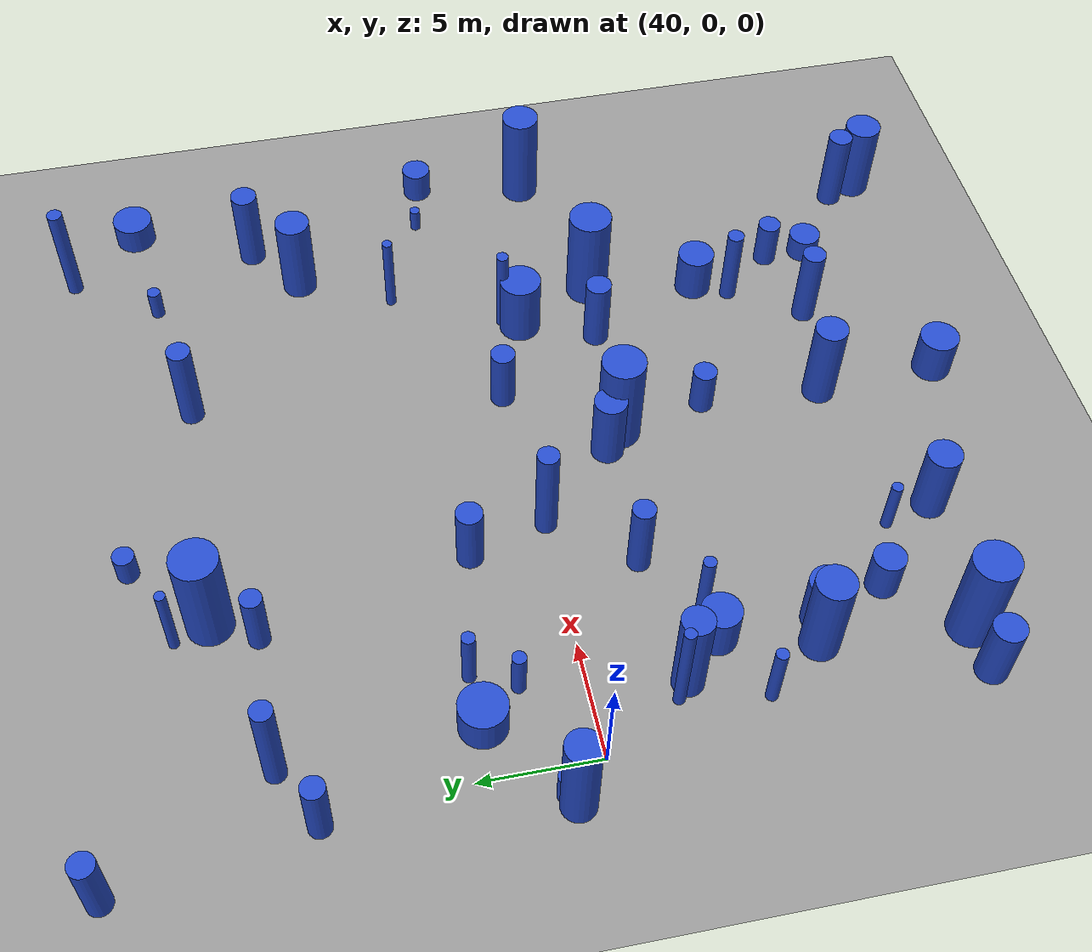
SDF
<sdf version="1.7">
 <world name="easy_forest">
  <model name="ground_plane_map">
   <static>1</static>
   <link name="link">
    <collision name="collision">
     <geometry><plane><normal>0 0 1</normal><size>110 50</size></plane></geometry>
     <surface>
      <contact><collide_bitmask>65535</collide_bitmask></contact>
      <friction><ode><mu>100</mu><mu2>50</mu2></ode></friction>
     </surface>
    </collision>
    <visual name="visual">
     <cast_shadows>0</cast_shadows>
     <geometry><plane><normal>0 0 1</normal><size>110 50</size></plane></geometry>
     <material>
      <script><uri>file://media/materials/scripts/gazebo.material</uri><name>Gazebo/Grey</name></script>
     </material>
    </visual>
   </link>
   <pose>51 0 0 0 -0 0</pose>
  </model>
  <model name="0">
   <static>1</static>
   <link name="link">
    <inertial>
     <mass>2</mass>
     <inertia><ixx>3.51914</ixx><ixy>0</ixy><ixz>0</ixz><iyy>3.51914</iyy><iyz>0</iyz><izz>0.650222</izz></inertia>
    </inertial>
    <collision name="collision">
     <geometry><cylinder><length>4.37769</length><radius>0.806364</radius></cylinder></geometry>
     <surface><contact><collide_without_contact>0</collide_without_contact></contact></surface>
    </collision>
    <visual name="visual">
     <geometry><cylinder><length>4.37769</length><radius>0.806364</radius></cylinder></geometry>
     <material>
      <script><uri>file://media/materials/scripts/gazebo.material</uri><name>Gazebo/Blue</name></script>
      <ambient>1 1 1 1</ambient>
     </material>
     <meta><layer>0</layer></meta>
    </visual>
    <gravity>0</gravity>
   </link>
   <pose>43.1853 -9.25453 2.18884 0 -0 0</pose>
  </model>
  <model name="3">
   <static>1</static>
   <link name="link">
    <inertial>
     <mass>2</mass>
     <inertia><ixx>1.078</ixx><ixy>0</ixy><ixz>0</ixz><iyy>1.078</iyy><iyz>0</iyz><izz>0.647451</izz></inertia>
    </inertial>
    <collision name="collision">
     <geometry><cylinder><length>2.12735</length><radius>0.804643</radius></cylinder></geometry>
     <surface><contact><collide_without_contact>0</collide_without_contact></contact></surface>
    </collision>
    <visual name="visual">
     <geometry><cylinder><length>2.12735</length><radius>0.804643</radius></cylinder></geometry>
     <material>
      <script><uri>file://media/materials/scripts/gazebo.material</uri><name>Gazebo/Blue</name></script>
     </material>
    </visual>
    <gravity>0</gravity>
   </link>
   <pose>62.6464 -9.57824 1.06368 0 -0 0</pose>
  </model>
  <model name="6">
   <static>1</static>
   <link name="link">
    <inertial>
     <mass>2</mass>
     <inertia><ixx>1.43</ixx><ixy>0</ixy><ixz>0</ixz><iyy>1.43</iyy><iyz>0</iyz><izz>0.0787145</izz></inertia>
    </inertial>
    <collision name="collision">
     <geometry><cylinder><length>2.88857</length><radius>0.280561</radius></cylinder></geometry>
     <surface><contact><collide_without_contact>0</collide_without_contact></contact></surface>
    </collision>
    <visual name="visual">
     <geometry><cylinder><length>2.88857</length><radius>0.280561</radius></cylinder></geometry>
     <material>
      <script><uri>file://media/materials/scripts/gazebo.material</uri><name>Gazebo/Blue</name></script>
     </material>
    </visual>
    <gravity>0</gravity>
   </link>
   <pose>44.4541 4.37326 1.44429 0 -0 0</pose>
  </model>
  <model name="7">
   <static>1</static>
   <link name="link">
    <inertial>
     <mass>2</mass>
     <inertia><ixx>4.08056</ixx><ixy>0</ixy><ixz>0</ixz><iyy>4.08056</iyy><iyz>0</iyz><izz>0.947284</izz></inertia>
    </inertial>
    <collision name="collision">
     <geometry><cylinder><length>4.65204</length><radius>0.973285</radius></cylinder></geometry>
     <surface><contact><collide_without_contact>0</collide_without_contact></contact></surface>
    </collision>
    <visual name="visual">
     <geometry><cylinder><length>4.65204</length><radius>0.973285</radius></cylinder></geometry>
     <material>
      <script><uri>file://media/materials/scripts/gazebo.material</uri><name>Gazebo/Blue</name></script>
     </material>
    </visual>
    <gravity>0</gravity>
   </link>
   <pose>48.7457 13.9013 2.32602 0 -0 0</pose>
  </model>
  <model name="8">
   <static>1</static>
   <link name="link">
    <inertial>
     <mass>2</mass>
     <inertia><ixx>1.05113</ixx><ixy>0</ixy><ixz>0</ixz><iyy>1.05113</iyy><iyz>0</iyz><izz>0.712374</izz></inertia>
    </inertial>
    <collision name="collision">
     <geometry><cylinder><length>2.04197</length><radius>0.844022</radius></cylinder></geometry>
     <surface><contact><collide_without_contact>0</collide_without_contact></contact></surface>
    </collision>
    <visual name="visual">
     <geometry><cylinder><length>2.04197</length><radius>0.844022</radius></cylinder></geometry>
     <material>
      <script><uri>file://media/materials/scripts/gazebo.material</uri><name>Gazebo/Blue</name></script>
     </material>
    </visual>
    <gravity>0</gravity>
   </link>
   <pose>55.7877 -18.618 1.02099 0 -0 0</pose>
  </model>
  <model name="13">
   <static>1</static>
   <link name="link">
    <inertial>
     <mass>2</mass>
     <inertia>
      <ixx>0.395173</ixx>
      <ixy>0</ixy>
      <ixz>0</ixz>
      <iyy>0.395173</iyy>
      <iyz>0</iyz>
      <izz>0.207976</izz>
     </inertia>
    </inertial>
    <collision name="collision">
     <geometry><cylinder><length>1.32178</length><radius>0.456044</radius></cylinder></geometry>
     <surface><contact><collide_without_contact>0</collide_without_contact></contact></surface>
    </collision>
    <visual name="visual">
     <geometry><cylinder><length>1.32178</length><radius>0.456044</radius></cylinder></geometry>
     <material>
      <script><uri>file://media/materials/scripts/gazebo.material</uri><name>Gazebo/Blue</name></script>
     </material>
    </visual>
    <gravity>0</gravity>
   </link>
   <pose>51.7868 16.9186 0.660892 0 -0 0</pose>
  </model>
  <model name="14">
   <static>1</static>
   <link name="link">
    <inertial>
     <mass>2</mass>
     <inertia>
      <ixx>0.549243</ixx>
      <ixy>0</ixy>
      <ixz>0</ixz>
      <iyy>0.549243</iyy>
      <iyz>0</iyz>
      <izz>0.410899</izz>
     </inertia>
    </inertial>
    <collision name="collision">
     <geometry><cylinder><length>1.43623</length><radius>0.641014</radius></cylinder></geometry>
     <surface><contact><collide_without_contact>0</collide_without_contact></contact></surface>
    </collision>
    <visual name="visual">
     <geometry><cylinder><length>1.43623</length><radius>0.641014</radius></cylinder></geometry>
     <material>
      <script><uri>file://media/materials/scripts/gazebo.material</uri><name>Gazebo/Blue</name></script>
     </material>
    </visual>
    <gravity>0</gravity>
   </link>
   <pose>71.3913 1.83682 0.718116 0 -0 0</pose>
  </model>
  <model name="16">
   <static>1</static>
   <link name="link">
    <inertial>
     <mass>2</mass>
     <inertia><ixx>2.0255</ixx><ixy>0</ixy><ixz>0</ixz><iyy>2.0255</iyy><iyz>0</iyz><izz>0.309126</izz></inertia>
    </inertial>
    <collision name="collision">
     <geometry><cylinder><length>3.35047</length><radius>0.555991</radius></cylinder></geometry>
     <surface><contact><collide_without_contact>0</collide_without_contact></contact></surface>
    </collision>
    <visual name="visual">
     <geometry><cylinder><length>3.35047</length><radius>0.555991</radius></cylinder></geometry>
     <material>
      <script><uri>file://media/materials/scripts/gazebo.material</uri><name>Gazebo/Blue</name></script>
     </material>
    </visual>
    <gravity>0</gravity>
   </link>
   <pose>60.5216 -4.47597 1.67523 0 -0 0</pose>
  </model>
  <model name="18">
   <static>1</static>
   <link name="link">
    <inertial>
     <mass>2</mass>
     <inertia><ixx>2.24806</ixx><ixy>0</ixy><ixz>0</ixz><iyy>2.24806</iyy><iyz>0</iyz><izz>0.5261</izz></inertia>
    </inertial>
    <collision name="collision">
     <geometry><cylinder><length>3.45109</length><radius>0.725328</radius></cylinder></geometry>
     <surface><contact><collide_without_contact>0</collide_without_contact></contact></surface>
    </collision>
    <visual name="visual">
     <geometry><cylinder><length>3.45109</length><radius>0.725328</radius></cylinder></geometry>
     <material>
      <script><uri>file://media/materials/scripts/gazebo.material</uri><name>Gazebo/Blue</name></script>
     </material>
    </visual>
    <gravity>0</gravity>
   </link>
   <pose>48.6871 -15.812 1.72555 0 -0 0</pose>
  </model>
  <model name="20">
   <static>1</static>
   <link name="link">
    <inertial>
     <mass>2</mass>
     <inertia><ixx>3.95583</ixx><ixy>0</ixy><ixz>0</ixz><iyy>3.95583</iyy><iyz>0</iyz><izz>0.880718</izz></inertia>
    </inertial>
    <collision name="collision">
     <geometry><cylinder><length>4.59269</length><radius>0.938466</radius></cylinder></geometry>
     <surface><contact><collide_without_contact>0</collide_without_contact></contact></surface>
    </collision>
    <visual name="visual">
     <geometry><cylinder><length>4.59269</length><radius>0.938466</radius></cylinder></geometry>
     <material>
      <script><uri>file://media/materials/scripts/gazebo.material</uri><name>Gazebo/Blue</name></script>
     </material>
    </visual>
    <gravity>0</gravity>
   </link>
   <pose>54.9838 -4.14413 2.29635 0 -0 0</pose>
  </model>
  <model name="24">
   <static>1</static>
   <link name="link">
    <inertial>
     <mass>2</mass>
     <inertia><ixx>2.93809</ixx><ixy>0</ixy><ixz>0</ixz><iyy>2.93809</iyy><iyz>0</iyz><izz>0.070702</izz></inertia>
    </inertial>
    <collision name="collision">
     <geometry><cylinder><length>4.1733</length><radius>0.265898</radius></cylinder></geometry>
     <surface><contact><collide_without_contact>0</collide_without_contact></contact></surface>
    </collision>
    <visual name="visual">
     <geometry><cylinder><length>4.1733</length><radius>0.265898</radius></cylinder></geometry>
     <material>
      <script><uri>file://media/materials/scripts/gazebo.material</uri><name>Gazebo/Blue</name></script>
     </material>
    </visual>
    <gravity>0</gravity>
   </link>
   <pose>62.2183 -0.535023 2.08665 0 -0 0</pose>
  </model>
  <model name="29">
   <static>1</static>
   <link name="link">
    <inertial>
     <mass>2</mass>
     <inertia>
      <ixx>2.33382</ixx>
      <ixy>0</ixy>
      <ixz>0</ixz>
      <iyy>2.33382</iyy>
      <iyz>0</iyz>
      <izz>0.0489991</izz>
     </inertia>
    </inertial>
    <collision name="collision">
     <geometry><cylinder><length>3.72236</length><radius>0.221357</radius></cylinder></geometry>
     <surface><contact><collide_without_contact>0</collide_without_contact></contact></surface>
    </collision>
    <visual name="visual">
     <geometry><cylinder><length>3.72236</length><radius>0.221357</radius></cylinder></geometry>
     <material>
      <script><uri>file://media/materials/scripts/gazebo.material</uri><name>Gazebo/Blue</name></script>
     </material>
    </visual>
    <gravity>0</gravity>
   </link>
   <pose>64.4402 4.20646 1.86118 0 -0 0</pose>
  </model>
  <model name="30">
   <static>1</static>
   <link name="link">
    <inertial>
     <mass>2</mass>
     <inertia><ixx>1.95076</ixx><ixy>0</ixy><ixz>0</ixz><iyy>1.95076</iyy><iyz>0</iyz><izz>0.263136</izz></inertia>
    </inertial>
    <collision name="collision">
     <geometry><cylinder><length>3.30381</length><radius>0.512968</radius></cylinder></geometry>
     <surface><contact><collide_without_contact>0</collide_without_contact></contact></surface>
    </collision>
    <visual name="visual">
     <geometry><cylinder><length>3.30381</length><radius>0.512968</radius></cylinder></geometry>
     <material>
      <script><uri>file://media/materials/scripts/gazebo.material</uri><name>Gazebo/Blue</name></script>
     </material>
    </visual>
    <gravity>0</gravity>
   </link>
   <pose>38.1472 18.7277 1.65191 0 -0 0</pose>
  </model>
  <model name="37">
   <static>1</static>
   <link name="link">
    <inertial>
     <mass>2</mass>
     <inertia><ixx>3.69723</ixx><ixy>0</ixy><ixz>0</ixz><iyy>3.69723</iyy><iyz>0</iyz><izz>0.112587</izz></inertia>
    </inertial>
    <collision name="collision">
     <geometry><cylinder><length>4.67393</length><radius>0.33554</radius></cylinder></geometry>
     <surface><contact><collide_without_contact>0</collide_without_contact></contact></surface>
    </collision>
    <visual name="visual">
     <geometry><cylinder><length>4.67393</length><radius>0.33554</radius></cylinder></geometry>
     <material>
      <script><uri>file://media/materials/scripts/gazebo.material</uri><name>Gazebo/Blue</name></script>
     </material>
    </visual>
    <gravity>0</gravity>
   </link>
   <pose>68.1482 18.3489 2.33696 0 -0 0</pose>
  </model>
  <model name="39">
   <static>1</static>
   <link name="link">
    <inertial>
     <mass>2</mass>
     <inertia>
      <ixx>0.897959</ixx>
      <ixy>0</ixy>
      <ixz>0</ixz>
      <iyy>0.897959</iyy>
      <iyz>0</iyz>
      <izz>0.458916</izz>
     </inertia>
    </inertial>
    <collision name="collision">
     <geometry><cylinder><length>2.00275</length><radius>0.677433</radius></cylinder></geometry>
     <surface><contact><collide_without_contact>0</collide_without_contact></contact></surface>
    </collision>
    <visual name="visual">
     <geometry><cylinder><length>2.00275</length><radius>0.677433</radius></cylinder></geometry>
     <material>
      <script><uri>file://media/materials/scripts/gazebo.material</uri><name>Gazebo/Blue</name></script>
     </material>
    </visual>
    <gravity>0</gravity>
   </link>
   <pose>45.3096 -12.5666 1.00137 0 -0 0</pose>
  </model>
  <model name="40">
   <static>1</static>
   <link name="link">
    <inertial>
     <mass>2</mass>
     <inertia><ixx>1.528</ixx><ixy>0</ixy><ixz>0</ixz><iyy>1.528</iyy><iyz>0</iyz><izz>0.278704</izz></inertia>
    </inertial>
    <collision name="collision">
     <geometry><cylinder><length>2.8865</length><radius>0.527924</radius></cylinder></geometry>
     <surface><contact><collide_without_contact>0</collide_without_contact></contact></surface>
    </collision>
    <visual name="visual">
     <geometry><cylinder><length>2.8865</length><radius>0.527924</radius></cylinder></geometry>
     <material>
      <script><uri>file://media/materials/scripts/gazebo.material</uri><name>Gazebo/Blue</name></script>
     </material>
    </visual>
    <gravity>0</gravity>
   </link>
   <pose>57.8383 0.334925 1.44325 0 -0 0</pose>
  </model>
  <model name="47">
   <static>1</static>
   <link name="link">
    <inertial>
     <mass>2</mass>
     <inertia>
      <ixx>0.987383</ixx>
      <ixy>0</ixy>
      <ixz>0</ixz>
      <iyy>0.987383</iyy>
      <iyz>0</iyz>
      <izz>0.153298</izz>
     </inertia>
    </inertial>
    <collision name="collision">
     <geometry><cylinder><length>2.33761</length><radius>0.391533</radius></cylinder></geometry>
     <surface><contact><collide_without_contact>0</collide_without_contact></contact></surface>
    </collision>
    <visual name="visual">
     <geometry><cylinder><length>2.33761</length><radius>0.391533</radius></cylinder></geometry>
     <material>
      <script><uri>file://media/materials/scripts/gazebo.material</uri><name>Gazebo/Blue</name></script>
     </material>
    </visual>
    <gravity>0</gravity>
   </link>
   <pose>64.6323 -4.75905 1.1688 0 -0 0</pose>
  </model>
  <model name="48">
   <static>1</static>
   <link name="link">
    <inertial>
     <mass>2</mass>
     <inertia><ixx>3.59174</ixx><ixy>0</ixy><ixz>0</ixz><iyy>3.59174</iyy><iyz>0</iyz><izz>0.428398</izz></inertia>
    </inertial>
    <collision name="collision">
     <geometry><cylinder><length>4.50169</length><radius>0.654521</radius></cylinder></geometry>
     <surface><contact><collide_without_contact>0</collide_without_contact></contact></surface>
    </collision>
    <visual name="visual">
     <geometry><cylinder><length>4.50169</length><radius>0.654521</radius></cylinder></geometry>
     <material>
      <script><uri>file://media/materials/scripts/gazebo.material</uri><name>Gazebo/Blue</name></script>
     </material>
    </visual>
    <gravity>0</gravity>
   </link>
   <pose>42.5527 -3.78138 2.25085 0 -0 0</pose>
  </model>
  <model name="49">
   <static>1</static>
   <link name="link">
    <inertial>
     <mass>2</mass>
     <inertia><ixx>2.55883</ixx><ixy>0</ixy><ixz>0</ixz><iyy>2.55883</iyy><iyz>0</iyz><izz>0.285777</izz></inertia>
    </inertial>
    <collision name="collision">
     <geometry><cylinder><length>3.80732</length><radius>0.534581</radius></cylinder></geometry>
     <surface><contact><collide_without_contact>0</collide_without_contact></contact></surface>
    </collision>
    <visual name="visual">
     <geometry><cylinder><length>3.80732</length><radius>0.534581</radius></cylinder></geometry>
     <material>
      <script><uri>file://media/materials/scripts/gazebo.material</uri><name>Gazebo/Blue</name></script>
     </material>
    </visual>
    <gravity>0</gravity>
   </link>
   <pose>67.0462 -17.6442 1.90366 0 -0 0</pose>
  </model>
  <model name="52">
   <static>1</static>
   <link name="link">
    <inertial>
     <mass>2</mass>
     <inertia><ixx>1.5795</ixx><ixy>0</ixy><ixz>0</ixz><iyy>1.5795</iyy><iyz>0</iyz><izz>0.202182</izz></inertia>
    </inertial>
    <collision name="collision">
     <geometry><cylinder><length>2.97833</length><radius>0.449647</radius></cylinder></geometry>
     <surface><contact><collide_without_contact>0</collide_without_contact></contact></surface>
    </collision>
    <visual name="visual">
     <geometry><cylinder><length>2.97833</length><radius>0.449647</radius></cylinder></geometry>
     <material>
      <script><uri>file://media/materials/scripts/gazebo.material</uri><name>Gazebo/Blue</name></script>
     </material>
    </visual>
    <gravity>0</gravity>
   </link>
   <pose>47.719 12.0839 1.48917 0 -0 0</pose>
  </model>
  <model name="57">
   <static>1</static>
   <link name="link">
    <inertial>
     <mass>2</mass>
     <inertia>
      <ixx>0.366093</ixx>
      <ixy>0</ixy>
      <ixz>0</ixz>
      <iyy>0.366093</iyy>
      <iyz>0</iyz>
      <izz>0.0870977</izz>
     </inertia>
    </inertial>
    <collision name="collision">
     <geometry><cylinder><length>1.39114</length><radius>0.295123</radius></cylinder></geometry>
     <surface><contact><collide_without_contact>0</collide_without_contact></contact></surface>
    </collision>
    <visual name="visual">
     <geometry><cylinder><length>1.39114</length><radius>0.295123</radius></cylinder></geometry>
     <material>
      <script><uri>file://media/materials/scripts/gazebo.material</uri><name>Gazebo/Blue</name></script>
     </material>
    </visual>
    <gravity>0</gravity>
   </link>
   <pose>65.8384 14.7256 0.695569 0 -0 0</pose>
  </model>
  <model name="62">
   <static>1</static>
   <link name="link">
    <inertial>
     <mass>2</mass>
     <inertia>
      <ixx>0.219388</ixx>
      <ixy>0</ixy>
      <ixz>0</ixz>
      <iyy>0.219388</iyy>
      <iyz>0</iyz>
      <izz>0.0540705</izz>
     </inertia>
    </inertial>
    <collision name="collision">
     <geometry><cylinder><length>1.0743</length><radius>0.232531</radius></cylinder></geometry>
     <surface><contact><collide_without_contact>0</collide_without_contact></contact></surface>
    </collision>
    <visual name="visual">
     <geometry><cylinder><length>1.0743</length><radius>0.232531</radius></cylinder></geometry>
     <material>
      <script><uri>file://media/materials/scripts/gazebo.material</uri><name>Gazebo/Blue</name></script>
     </material>
    </visual>
    <gravity>0</gravity>
   </link>
   <pose>69.0155 2.30709 0.537149 0 -0 0</pose>
  </model>
  <model name="64">
   <static>1</static>
   <link name="link">
    <inertial>
     <mass>2</mass>
     <inertia><ixx>2.95166</ixx><ixy>0</ixy><ixz>0</ixz><iyy>2.95166</iyy><iyz>0</iyz><izz>0.579212</izz></inertia>
    </inertial>
    <collision name="collision">
     <geometry><cylinder><length>3.99654</length><radius>0.76106</radius></cylinder></geometry>
     <surface><contact><collide_without_contact>0</collide_without_contact></contact></surface>
    </collision>
    <visual name="visual">
     <geometry><cylinder><length>3.99654</length><radius>0.76106</radius></cylinder></geometry>
     <material>
      <script><uri>file://media/materials/scripts/gazebo.material</uri><name>Gazebo/Blue</name></script>
     </material>
    </visual>
    <gravity>0</gravity>
   </link>
   <pose>66.2997 8.17107 1.99827 0 -0 0</pose>
  </model>
  <model name="65">
   <static>1</static>
   <link name="link">
    <inertial>
     <mass>2</mass>
     <inertia><ixx>3.79686</ixx><ixy>0</ixy><ixz>0</ixz><iyy>3.79686</iyy><iyz>0</iyz><izz>0.507105</izz></inertia>
    </inertial>
    <collision name="collision">
     <geometry><cylinder><length>4.61084</length><radius>0.712113</radius></cylinder></geometry>
     <surface><contact><collide_without_contact>0</collide_without_contact></contact></surface>
    </collision>
    <visual name="visual">
     <geometry><cylinder><length>4.61084</length><radius>0.712113</radius></cylinder></geometry>
     <material>
      <script><uri>file://media/materials/scripts/gazebo.material</uri><name>Gazebo/Blue</name></script>
     </material>
    </visual>
    <gravity>0</gravity>
   </link>
   <pose>38.4266 1.46313 2.30542 0 -0 0</pose>
  </model>
  <model name="69">
   <static>1</static>
   <link name="link">
    <inertial>
     <mass>2</mass>
     <inertia>
      <ixx>0.909292</ixx>
      <ixy>0</ixy>
      <ixz>0</ixz>
      <iyy>0.909292</iyy>
      <iyz>0</iyz>
      <izz>0.266084</izz>
     </inertia>
    </inertial>
    <collision name="collision">
     <geometry><cylinder><length>2.15812</length><radius>0.515834</radius></cylinder></geometry>
     <surface><contact><collide_without_contact>0</collide_without_contact></contact></surface>
    </collision>
    <visual name="visual">
     <geometry><cylinder><length>2.15812</length><radius>0.515834</radius></cylinder></geometry>
     <material>
      <script><uri>file://media/materials/scripts/gazebo.material</uri><name>Gazebo/Blue</name></script>
     </material>
    </visual>
    <gravity>0</gravity>
   </link>
   <pose>55.7984 -8.05058 1.07906 0 -0 0</pose>
  </model>
  <model name="71">
   <static>1</static>
   <link name="link">
    <inertial>
     <mass>2</mass>
     <inertia>
      <ixx>1.62656</ixx>
      <ixy>0</ixy>
      <ixz>0</ixz>
      <iyy>1.62656</iyy>
      <iyz>0</iyz>
      <izz>0.0658899</izz>
     </inertia>
    </inertial>
    <collision name="collision">
     <geometry><cylinder><length>3.0922</length><radius>0.25669</radius></cylinder></geometry>
     <surface><contact><collide_without_contact>0</collide_without_contact></contact></surface>
    </collision>
    <visual name="visual">
     <geometry><cylinder><length>3.0922</length><radius>0.25669</radius></cylinder></geometry>
     <material>
      <script><uri>file://media/materials/scripts/gazebo.material</uri><name>Gazebo/Blue</name></script>
     </material>
    </visual>
    <gravity>0</gravity>
   </link>
   <pose>41.3666 -6.77114 1.5461 0 -0 0</pose>
  </model>
  <model name="75">
   <static>1</static>
   <link name="link">
    <inertial>
     <mass>2</mass>
     <inertia><ixx>3.93022</ixx><ixy>0</ixy><ixz>0</ixz><iyy>3.93022</iyy><iyz>0</iyz><izz>0.87563</izz></inertia>
    </inertial>
    <collision name="collision">
     <geometry><cylinder><length>4.5776</length><radius>0.935751</radius></cylinder></geometry>
     <surface><contact><collide_without_contact>0</collide_without_contact></contact></surface>
    </collision>
    <visual name="visual">
     <geometry><cylinder><length>4.5776</length><radius>0.935751</radius></cylinder></geometry>
     <material>
      <script><uri>file://media/materials/scripts/gazebo.material</uri><name>Gazebo/Blue</name></script>
     </material>
    </visual>
    <gravity>0</gravity>
   </link>
   <pose>63.437 -4.74428 2.2888 0 -0 0</pose>
  </model>
  <model name="78">
   <static>1</static>
   <link name="link">
    <inertial>
     <mass>2</mass>
     <inertia><ixx>1.73313</ixx><ixy>0</ixy><ixz>0</ixz><iyy>1.73313</iyy><iyz>0</iyz><izz>0.312297</izz></inertia>
    </inertial>
    <collision name="collision">
     <geometry><cylinder><length>3.07601</length><radius>0.558835</radius></cylinder></geometry>
     <surface><contact><collide_without_contact>0</collide_without_contact></contact></surface>
    </collision>
    <visual name="visual">
     <geometry><cylinder><length>3.07601</length><radius>0.558835</radius></cylinder></geometry>
     <material>
      <script><uri>file://media/materials/scripts/gazebo.material</uri><name>Gazebo/Blue</name></script>
     </material>
    </visual>
    <gravity>0</gravity>
   </link>
   <pose>49.8746 3.30067 1.53801 0 -0 0</pose>
  </model>
  <model name="80">
   <static>1</static>
   <link name="link">
    <inertial>
     <mass>2</mass>
     <inertia><ixx>1.03367</ixx><ixy>0</ixy><ixz>0</ixz><iyy>1.03367</iyy><iyz>0</iyz><izz>0.675158</izz></inertia>
    </inertial>
    <collision name="collision">
     <geometry><cylinder><length>2.04367</length><radius>0.82168</radius></cylinder></geometry>
     <surface><contact><collide_without_contact>0</collide_without_contact></contact></surface>
    </collision>
    <visual name="visual">
     <geometry><cylinder><length>2.04367</length><radius>0.82168</radius></cylinder></geometry>
     <material>
      <script><uri>file://media/materials/scripts/gazebo.material</uri><name>Gazebo/Blue</name></script>
     </material>
    </visual>
    <gravity>0</gravity>
   </link>
   <pose>44.2351 -5.42668 1.02183 0 -0 0</pose>
  </model>
  <model name="81">
   <static>1</static>
   <link name="link">
    <inertial>
     <mass>2</mass>
     <inertia>
      <ixx>0.659503</ixx>
      <ixy>0</ixy>
      <ixz>0</ixz>
      <iyy>0.659503</iyy>
      <iyz>0</iyz>
      <izz>0.793637</izz>
     </inertia>
    </inertial>
    <collision name="collision">
     <geometry><cylinder><length>1.25543</length><radius>0.890863</radius></cylinder></geometry>
     <surface><contact><collide_without_contact>0</collide_without_contact></contact></surface>
    </collision>
    <visual name="visual">
     <geometry><cylinder><length>1.25543</length><radius>0.890863</radius></cylinder></geometry>
     <material>
      <script><uri>file://media/materials/scripts/gazebo.material</uri><name>Gazebo/Blue</name></script>
     </material>
    </visual>
    <gravity>0</gravity>
   </link>
   <pose>70.8405 15.4024 0.627716 0 -0 0</pose>
  </model>
  <model name="84">
   <static>1</static>
   <link name="link">
    <inertial>
     <mass>2</mass>
     <inertia>
      <ixx>0.483142</ixx>
      <ixy>0</ixy>
      <ixz>0</ixz>
      <iyy>0.483142</iyy>
      <iyz>0</iyz>
      <izz>0.128433</izz>
     </inertia>
    </inertial>
    <collision name="collision">
     <geometry><cylinder><length>1.58542</length><radius>0.358376</radius></cylinder></geometry>
     <surface><contact><collide_without_contact>0</collide_without_contact></contact></surface>
    </collision>
    <visual name="visual">
     <geometry><cylinder><length>1.58542</length><radius>0.358376</radius></cylinder></geometry>
     <material>
      <script><uri>file://media/materials/scripts/gazebo.material</uri><name>Gazebo/Blue</name></script>
     </material>
    </visual>
    <gravity>0</gravity>
   </link>
   <pose>38.8906 1.8224 0.792709 0 -0 0</pose>
  </model>
  <model name="87">
   <static>1</static>
   <link name="link">
    <inertial>
     <mass>2</mass>
     <inertia><ixx>3.73686</ixx><ixy>0</ixy><ixz>0</ixz><iyy>3.73686</iyy><iyz>0</iyz><izz>0.209735</izz></inertia>
    </inertial>
    <collision name="collision">
     <geometry><cylinder><length>4.66819</length><radius>0.457968</radius></cylinder></geometry>
     <surface><contact><collide_without_contact>0</collide_without_contact></contact></surface>
    </collision>
    <visual name="visual">
     <geometry><cylinder><length>4.66819</length><radius>0.457968</radius></cylinder></geometry>
     <material>
      <script><uri>file://media/materials/scripts/gazebo.material</uri><name>Gazebo/Blue</name></script>
     </material>
    </visual>
    <gravity>0</gravity>
   </link>
   <pose>50.8455 -0.052897 2.33409 0 -0 0</pose>
  </model>
  <model name="88">
   <static>1</static>
   <link name="link">
    <inertial>
     <mass>2</mass>
     <inertia><ixx>2.32278</ixx><ixy>0</ixy><ixz>0</ixz><iyy>2.32278</iyy><iyz>0</iyz><izz>0.13075</izz></inertia>
    </inertial>
    <collision name="collision">
     <geometry><cylinder><length>3.68027</length><radius>0.361593</radius></cylinder></geometry>
     <surface><contact><collide_without_contact>0</collide_without_contact></contact></surface>
    </collision>
    <visual name="visual">
     <geometry><cylinder><length>3.68027</length><radius>0.361593</radius></cylinder></geometry>
     <material>
      <script><uri>file://media/materials/scripts/gazebo.material</uri><name>Gazebo/Blue</name></script>
     </material>
    </visual>
    <gravity>0</gravity>
   </link>
   <pose>61.8977 -11.0457 1.84014 0 -0 0</pose>
  </model>
  <model name="99">
   <static>1</static>
   <link name="link">
    <inertial>
     <mass>2</mass>
     <inertia><ixx>3.02053</ixx><ixy>0</ixy><ixz>0</ixz><iyy>3.02053</iyy><iyz>0</iyz><izz>0.260973</izz></inertia>
    </inertial>
    <collision name="collision">
     <geometry><cylinder><length>4.16416</length><radius>0.510855</radius></cylinder></geometry>
     <surface><contact><collide_without_contact>0</collide_without_contact></contact></surface>
    </collision>
    <visual name="visual">
     <geometry><cylinder><length>4.16416</length><radius>0.510855</radius></cylinder></geometry>
     <material>
      <script><uri>file://media/materials/scripts/gazebo.material</uri><name>Gazebo/Blue</name></script>
     </material>
    </visual>
    <gravity>0</gravity>
   </link>
   <pose>59.5506 13.6937 2.08208 0 -0 0</pose>
  </model>
  <model name="102">
   <static>1</static>
   <link name="link">
    <inertial>
     <mass>2</mass>
     <inertia><ixx>3.89278</ixx><ixy>0</ixy><ixz>0</ixz><iyy>3.89278</iyy><iyz>0</iyz><izz>0.19558</izz></inertia>
    </inertial>
    <collision name="collision">
     <geometry><cylinder><length>4.77179</length><radius>0.442244</radius></cylinder></geometry>
     <surface><contact><collide_without_contact>0</collide_without_contact></contact></surface>
    </collision>
    <visual name="visual">
     <geometry><cylinder><length>4.77179</length><radius>0.442244</radius></cylinder></geometry>
     <material>
      <script><uri>file://media/materials/scripts/gazebo.material</uri><name>Gazebo/Blue</name></script>
     </material>
    </visual>
    <gravity>0</gravity>
   </link>
   <pose>41.8886 12.1273 2.38589 0 -0 0</pose>
  </model>
  <model name="106">
   <static>1</static>
   <link name="link">
    <inertial>
     <mass>2</mass>
     <inertia>
      <ixx>0.919024</ixx>
      <ixy>0</ixy>
      <ixz>0</ixz>
      <iyy>0.919024</iyy>
      <iyz>0</iyz>
      <izz>0.978843</izz>
     </inertia>
    </inertial>
    <collision name="collision">
     <geometry><cylinder><length>1.6055</length><radius>0.989365</radius></cylinder></geometry>
     <surface><contact><collide_without_contact>0</collide_without_contact></contact></surface>
    </collision>
    <visual name="visual">
     <geometry><cylinder><length>1.6055</length><radius>0.989365</radius></cylinder></geometry>
     <material>
      <script><uri>file://media/materials/scripts/gazebo.material</uri><name>Gazebo/Blue</name></script>
     </material>
    </visual>
    <gravity>0</gravity>
   </link>
   <pose>42.2898 4.24967 0.802748 0 -0 0</pose>
  </model>
  <model name="107">
   <static>1</static>
   <link name="link">
    <inertial>
     <mass>2</mass>
     <inertia>
      <ixx>1.10921</ixx>
      <ixy>0</ixy>
      <ixz>0</ixz>
      <iyy>1.10921</iyy>
      <iyz>0</iyz>
      <izz>0.0564663</izz>
     </inertia>
    </inertial>
    <collision name="collision">
     <geometry><cylinder><length>2.54673</length><radius>0.237626</radius></cylinder></geometry>
     <surface><contact><collide_without_contact>0</collide_without_contact></contact></surface>
    </collision>
    <visual name="visual">
     <geometry><cylinder><length>2.54673</length><radius>0.237626</radius></cylinder></geometry>
     <material>
      <script><uri>file://media/materials/scripts/gazebo.material</uri><name>Gazebo/Blue</name></script>
     </material>
    </visual>
    <gravity>0</gravity>
   </link>
   <pose>48.1028 -13.7796 1.27337 0 -0 0</pose>
  </model>
  <model name="108">
   <static>1</static>
   <link name="link">
    <inertial>
     <mass>2</mass>
     <inertia>
      <ixx>0.453527</ixx>
      <ixy>0</ixy>
      <ixz>0</ixz>
      <iyy>0.453527</iyy>
      <iyz>0</iyz>
      <izz>0.481525</izz>
     </inertia>
    </inertial>
    <collision name="collision">
     <geometry><cylinder><length>1.12986</length><radius>0.69392</radius></cylinder></geometry>
     <surface><contact><collide_without_contact>0</collide_without_contact></contact></surface>
    </collision>
    <visual name="visual">
     <geometry><cylinder><length>1.12986</length><radius>0.69392</radius></cylinder></geometry>
     <material>
      <script><uri>file://media/materials/scripts/gazebo.material</uri><name>Gazebo/Blue</name></script>
     </material>
    </visual>
    <gravity>0</gravity>
   </link>
   <pose>63.8163 -15.2405 0.564931 0 -0 0</pose>
  </model>
  <model name="109">
   <static>1</static>
   <link name="link">
    <inertial>
     <mass>2</mass>
     <inertia><ixx>1.81694</ixx><ixy>0</ixy><ixz>0</ixz><iyy>1.81694</iyy><iyz>0</iyz><izz>0.227848</izz></inertia>
    </inertial>
    <collision name="collision">
     <geometry><cylinder><length>3.19658</length><radius>0.477334</radius></cylinder></geometry>
     <surface><contact><collide_without_contact>0</collide_without_contact></contact></surface>
    </collision>
    <visual name="visual">
     <geometry><cylinder><length>3.19658</length><radius>0.477334</radius></cylinder></geometry>
     <material>
      <script><uri>file://media/materials/scripts/gazebo.material</uri><name>Gazebo/Blue</name></script>
     </material>
    </visual>
    <gravity>0</gravity>
   </link>
   <pose>39.4527 10.7929 1.59829 0 -0 0</pose>
  </model>
  <model name="110">
   <static>1</static>
   <link name="link">
    <inertial>
     <mass>2</mass>
     <inertia><ixx>1.87106</ixx><ixy>0</ixy><ixz>0</ixz><iyy>1.87106</iyy><iyz>0</iyz><izz>0.819064</izz></inertia>
    </inertial>
    <collision name="collision">
     <geometry><cylinder><length>2.96128</length><radius>0.905021</radius></cylinder></geometry>
     <surface><contact><collide_without_contact>0</collide_without_contact></contact></surface>
    </collision>
    <visual name="visual">
     <geometry><cylinder><length>2.96128</length><radius>0.905021</radius></cylinder></geometry>
     <material>
      <script><uri>file://media/materials/scripts/gazebo.material</uri><name>Gazebo/Blue</name></script>
     </material>
    </visual>
    <gravity>0</gravity>
   </link>
   <pose>61.8127 -1.25307 1.48064 0 -0 0</pose>
  </model>
  <model name="119">
   <static>1</static>
   <link name="link">
    <inertial>
     <mass>2</mass>
     <inertia><ixx>3.79723</ixx><ixy>0</ixy><ixz>0</ixz><iyy>3.79723</iyy><iyz>0</iyz><izz>0.67818</izz></inertia>
    </inertial>
    <collision name="collision">
     <geometry><cylinder><length>4.55509</length><radius>0.823517</radius></cylinder></geometry>
     <surface><contact><collide_without_contact>0</collide_without_contact></contact></surface>
    </collision>
    <visual name="visual">
     <geometry><cylinder><length>4.55509</length><radius>0.823517</radius></cylinder></geometry>
     <material>
      <script><uri>file://media/materials/scripts/gazebo.material</uri><name>Gazebo/Blue</name></script>
     </material>
    </visual>
    <gravity>0</gravity>
   </link>
   <pose>70.5233 -3.06398 2.27754 0 -0 0</pose>
  </model>
  <model name="120">
   <static>1</static>
   <link name="link">
    <inertial>
     <mass>2</mass>
     <inertia>
      <ixx>0.864592</ixx>
      <ixy>0</ixy>
      <ixz>0</ixz>
      <iyy>0.864592</iyy>
      <iyz>0</iyz>
      <izz>0.084539</izz>
     </inertia>
    </inertial>
    <collision name="collision">
     <geometry><cylinder><length>2.22125</length><radius>0.290756</radius></cylinder></geometry>
     <surface><contact><collide_without_contact>0</collide_without_contact></contact></surface>
    </collision>
    <visual name="visual">
     <geometry><cylinder><length>2.22125</length><radius>0.290756</radius></cylinder></geometry>
     <material>
      <script><uri>file://media/materials/scripts/gazebo.material</uri><name>Gazebo/Blue</name></script>
     </material>
    </visual>
    <gravity>0</gravity>
   </link>
   <pose>43.6401 2.60213 1.11062 0 -0 0</pose>
  </model>
  <model name="121">
   <static>1</static>
   <link name="link">
    <inertial>
     <mass>2</mass>
     <inertia><ixx>4.11832</ixx><ixy>0</ixy><ixz>0</ixz><iyy>4.11832</iyy><iyz>0</iyz><izz>0.899849</izz></inertia>
    </inertial>
    <collision name="collision">
     <geometry><cylinder><length>4.69152</length><radius>0.948604</radius></cylinder></geometry>
     <surface><contact><collide_without_contact>0</collide_without_contact></contact></surface>
    </collision>
    <visual name="visual">
     <geometry><cylinder><length>4.69152</length><radius>0.948604</radius></cylinder></geometry>
     <material>
      <script><uri>file://media/materials/scripts/gazebo.material</uri><name>Gazebo/Blue</name></script>
     </material>
    </visual>
    <gravity>0</gravity>
   </link>
   <pose>42.7242 -15.2712 2.34576 0 -0 0</pose>
  </model>
  <model name="138">
   <static>1</static>
   <link name="link">
    <inertial>
     <mass>2</mass>
     <inertia>
      <ixx>2.13371</ixx>
      <ixy>0</ixy>
      <ixz>0</ixz>
      <iyy>2.13371</iyy>
      <iyz>0</iyz>
      <izz>0.0716336</izz>
     </inertia>
    </inertial>
    <collision name="collision">
     <geometry><cylinder><length>3.54786</length><radius>0.267645</radius></cylinder></geometry>
     <surface><contact><collide_without_contact>0</collide_without_contact></contact></surface>
    </collision>
    <visual name="visual">
     <geometry><cylinder><length>3.54786</length><radius>0.267645</radius></cylinder></geometry>
     <material>
      <script><uri>file://media/materials/scripts/gazebo.material</uri><name>Gazebo/Blue</name></script>
     </material>
    </visual>
    <gravity>0</gravity>
   </link>
   <pose>45.5107 -5.15977 1.77393 0 -0 0</pose>
  </model>
  <model name="139">
   <static>1</static>
   <link name="link">
    <inertial>
     <mass>2</mass>
     <inertia><ixx>3.8635</ixx><ixy>0</ixy><ixz>0</ixz><iyy>3.8635</iyy><iyz>0</iyz><izz>0.0606566</izz></inertia>
    </inertial>
    <collision name="collision">
     <geometry><cylinder><length>4.79573</length><radius>0.246286</radius></cylinder></geometry>
     <surface><contact><collide_without_contact>0</collide_without_contact></contact></surface>
    </collision>
    <visual name="visual">
     <geometry><cylinder><length>4.79573</length><radius>0.246286</radius></cylinder></geometry>
     <material>
      <script><uri>file://media/materials/scripts/gazebo.material</uri><name>Gazebo/Blue</name></script>
     </material>
    </visual>
    <gravity>0</gravity>
   </link>
   <pose>41.9076 -3.27021 2.39786 0 -0 0</pose>
  </model>
  <model name="143">
   <static>1</static>
   <link name="link">
    <inertial>
     <mass>2</mass>
     <inertia><ixx>1.45382</ixx><ixy>0</ixy><ixz>0</ixz><iyy>1.45382</iyy><iyz>0</iyz><izz>0.662779</izz></inertia>
    </inertial>
    <collision name="collision">
     <geometry><cylinder><length>2.59511</length><radius>0.814113</radius></cylinder></geometry>
     <surface><contact><collide_without_contact>0</collide_without_contact></contact></surface>
    </collision>
    <visual name="visual">
     <geometry><cylinder><length>2.59511</length><radius>0.814113</radius></cylinder></geometry>
     <material>
      <script><uri>file://media/materials/scripts/gazebo.material</uri><name>Gazebo/Blue</name></script>
     </material>
    </visual>
    <gravity>0</gravity>
   </link>
   <pose>44.2828 -9.67131 1.29755 0 -0 0</pose>
  </model>
  <model name="147">
   <static>1</static>
   <link name="link">
    <inertial>
     <mass>2</mass>
     <inertia><ixx>3.01418</ixx><ixy>0</ixy><ixz>0</ixz><iyy>3.01418</iyy><iyz>0</iyz><izz>0.494401</izz></inertia>
    </inertial>
    <collision name="collision">
     <geometry><cylinder><length>4.07454</length><radius>0.703136</radius></cylinder></geometry>
     <surface><contact><collide_without_contact>0</collide_without_contact></contact></surface>
    </collision>
    <visual name="visual">
     <geometry><cylinder><length>4.07454</length><radius>0.703136</radius></cylinder></geometry>
     <material>
      <script><uri>file://media/materials/scripts/gazebo.material</uri><name>Gazebo/Blue</name></script>
     </material>
    </visual>
    <gravity>0</gravity>
   </link>
   <pose>55.4572 -13.2677 2.03727 0 -0 0</pose>
  </model>
  <model name="148">
   <static>1</static>
   <link name="link">
    <inertial>
     <mass>2</mass>
     <inertia><ixx>2.60521</ixx><ixy>0</ixy><ixz>0</ixz><iyy>2.60521</iyy><iyz>0</iyz><izz>0.3331</izz></inertia>
    </inertial>
    <collision name="collision">
     <geometry><cylinder><length>3.82518</length><radius>0.577148</radius></cylinder></geometry>
     <surface><contact><collide_without_contact>0</collide_without_contact></contact></surface>
    </collision>
    <visual name="visual">
     <geometry><cylinder><length>3.82518</length><radius>0.577148</radius></cylinder></geometry>
     <material>
      <script><uri>file://media/materials/scripts/gazebo.material</uri><name>Gazebo/Blue</name></script>
     </material>
    </visual>
    <gravity>0</gravity>
   </link>
   <pose>68.6122 10.1034 1.91259 0 -0 0</pose>
  </model>
  <model name="151">
   <static>1</static>
   <link name="link">
    <inertial>
     <mass>2</mass>
     <inertia><ixx>1.82753</ixx><ixy>0</ixy><ixz>0</ixz><iyy>1.82753</iyy><iyz>0</iyz><izz>0.442615</izz></inertia>
    </inertial>
    <collision name="collision">
     <geometry><cylinder><length>3.10441</length><radius>0.665293</radius></cylinder></geometry>
     <surface><contact><collide_without_contact>0</collide_without_contact></contact></surface>
    </collision>
    <visual name="visual">
     <geometry><cylinder><length>3.10441</length><radius>0.665293</radius></cylinder></geometry>
     <material>
      <script><uri>file://media/materials/scripts/gazebo.material</uri><name>Gazebo/Blue</name></script>
     </material>
    </visual>
    <gravity>0</gravity>
   </link>
   <pose>40.7616 -15.3892 1.5522 0 -0 0</pose>
  </model>
  <model name="156">
   <static>1</static>
   <link name="link">
    <inertial>
     <mass>2</mass>
     <inertia><ixx>2.05672</ixx><ixy>0</ixy><ixz>0</ixz><iyy>2.05672</iyy><iyz>0</iyz><izz>0.492399</izz></inertia>
    </inertial>
    <collision name="collision">
     <geometry><cylinder><length>3.29593</length><radius>0.701712</radius></cylinder></geometry>
     <surface><contact><collide_without_contact>0</collide_without_contact></contact></surface>
    </collision>
    <visual name="visual">
     <geometry><cylinder><length>3.29593</length><radius>0.701712</radius></cylinder></geometry>
     <material>
      <script><uri>file://media/materials/scripts/gazebo.material</uri><name>Gazebo/Blue</name></script>
     </material>
    </visual>
    <gravity>0</gravity>
   </link>
   <pose>54.0935 -3.44264 1.64796 0 -0 0</pose>
  </model>
  <model name="158">
   <static>1</static>
   <link name="link">
    <inertial>
     <mass>2</mass>
     <inertia>
      <ixx>0.907831</ixx>
      <ixy>0</ixy>
      <ixz>0</ixz>
      <iyy>0.907831</iyy>
      <iyz>0</iyz>
      <izz>0.24745</izz>
     </inertia>
    </inertial>
    <collision name="collision">
     <geometry><cylinder><length>2.16902</length><radius>0.497443</radius></cylinder></geometry>
     <surface><contact><collide_without_contact>0</collide_without_contact></contact></surface>
    </collision>
    <visual name="visual">
     <geometry><cylinder><length>2.16902</length><radius>0.497443</radius></cylinder></geometry>
     <material>
      <script><uri>file://media/materials/scripts/gazebo.material</uri><name>Gazebo/Blue</name></script>
     </material>
    </visual>
    <gravity>0</gravity>
   </link>
   <pose>63.7529 -13.376 1.08451 0 -0 0</pose>
  </model>
  <model name="159">
   <static>1</static>
   <link name="link">
    <inertial>
     <mass>2</mass>
     <inertia><ixx>2.51924</ixx><ixy>0</ixy><ixz>0</ixz><iyy>2.51924</iyy><iyz>0</iyz><izz>0.255169</izz></inertia>
    </inertial>
    <collision name="collision">
     <geometry><cylinder><length>3.78813</length><radius>0.505142</radius></cylinder></geometry>
     <surface><contact><collide_without_contact>0</collide_without_contact></contact></surface>
    </collision>
    <visual name="visual">
     <geometry><cylinder><length>3.78813</length><radius>0.505142</radius></cylinder></geometry>
     <material>
      <script><uri>file://media/materials/scripts/gazebo.material</uri><name>Gazebo/Blue</name></script>
     </material>
    </visual>
    <gravity>0</gravity>
   </link>
   <pose>60.0142 -14.0545 1.89406 0 -0 0</pose>
  </model>
  <model name="160">
   <static>1</static>
   <link name="link">
    <inertial>
     <mass>2</mass>
     <inertia><ixx>2.36529</ixx><ixy>0</ixy><ixz>0</ixz><iyy>2.36529</iyy><iyz>0</iyz><izz>0.233527</izz></inertia>
    </inertial>
    <collision name="collision">
     <geometry><cylinder><length>3.67303</length><radius>0.483246</radius></cylinder></geometry>
     <surface><contact><collide_without_contact>0</collide_without_contact></contact></surface>
    </collision>
    <visual name="visual">
     <geometry><cylinder><length>3.67303</length><radius>0.483246</radius></cylinder></geometry>
     <material>
      <script><uri>file://media/materials/scripts/gazebo.material</uri><name>Gazebo/Blue</name></script>
     </material>
    </visual>
    <gravity>0</gravity>
   </link>
   <pose>48.293 -3.31366 1.83652 0 -0 0</pose>
  </model>
  <model name="163">
   <static>1</static>
   <link name="link">
    <inertial>
     <mass>2</mass>
     <inertia><ixx>2.048</ixx><ixy>0</ixy><ixz>0</ixz><iyy>2.048</iyy><iyz>0</iyz><izz>0.0485927</izz></inertia>
    </inertial>
    <collision name="collision">
     <geometry><cylinder><length>3.48457</length><radius>0.220437</radius></cylinder></geometry>
     <surface><contact><collide_without_contact>0</collide_without_contact></contact></surface>
    </collision>
    <visual name="visual">
     <geometry><cylinder><length>3.48457</length><radius>0.220437</radius></cylinder></geometry>
     <material>
      <script><uri>file://media/materials/scripts/gazebo.material</uri><name>Gazebo/Blue</name></script>
     </material>
    </visual>
    <gravity>0</gravity>
   </link>
   <pose>48.1654 15.3705 1.74228 0 -0 0</pose>
  </model>
  <model name="165">
   <static>1</static>
   <link name="link">
    <inertial>
     <mass>2</mass>
     <inertia><ixx>2.65261</ixx><ixy>0</ixy><ixz>0</ixz><iyy>2.65261</iyy><iyz>0</iyz><izz>0.629742</izz></inertia>
    </inertial>
    <collision name="collision">
     <geometry><cylinder><length>3.74519</length><radius>0.793563</radius></cylinder></geometry>
     <surface><contact><collide_without_contact>0</collide_without_contact></contact></surface>
    </collision>
    <visual name="visual">
     <geometry><cylinder><length>3.74519</length><radius>0.793563</radius></cylinder></geometry>
     <material>
      <script><uri>file://media/materials/scripts/gazebo.material</uri><name>Gazebo/Blue</name></script>
     </material>
    </visual>
    <gravity>0</gravity>
   </link>
   <pose>67.6325 -18.9597 1.87259 0 -0 0</pose>
  </model>
 </world>
</sdf>
